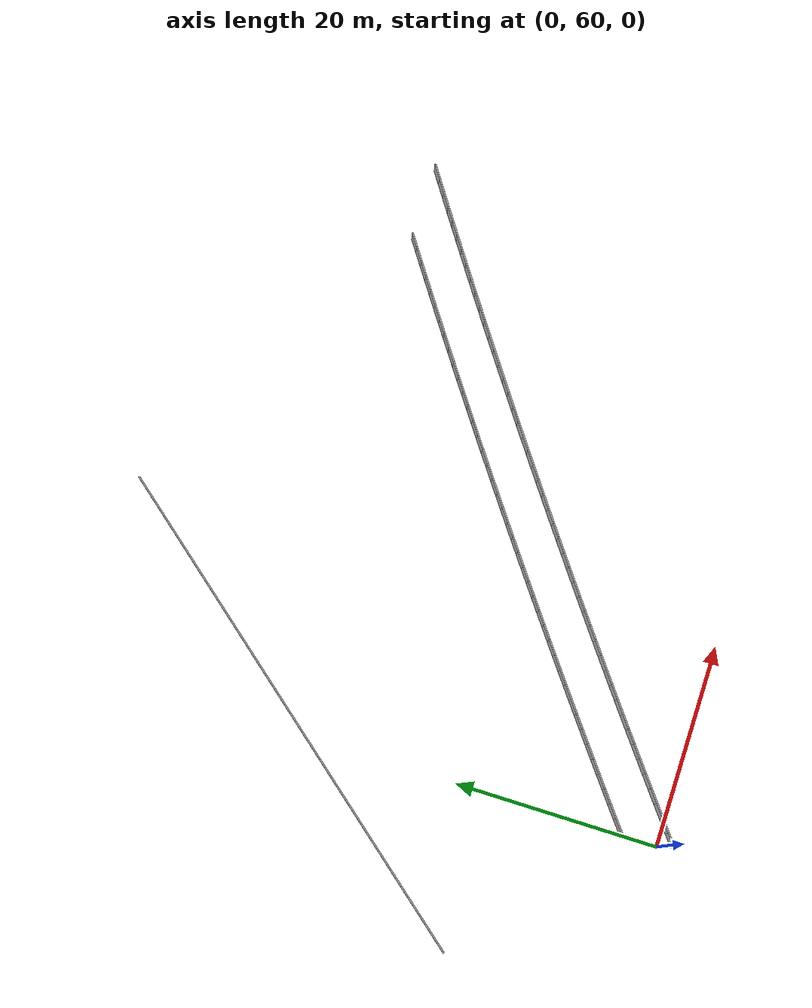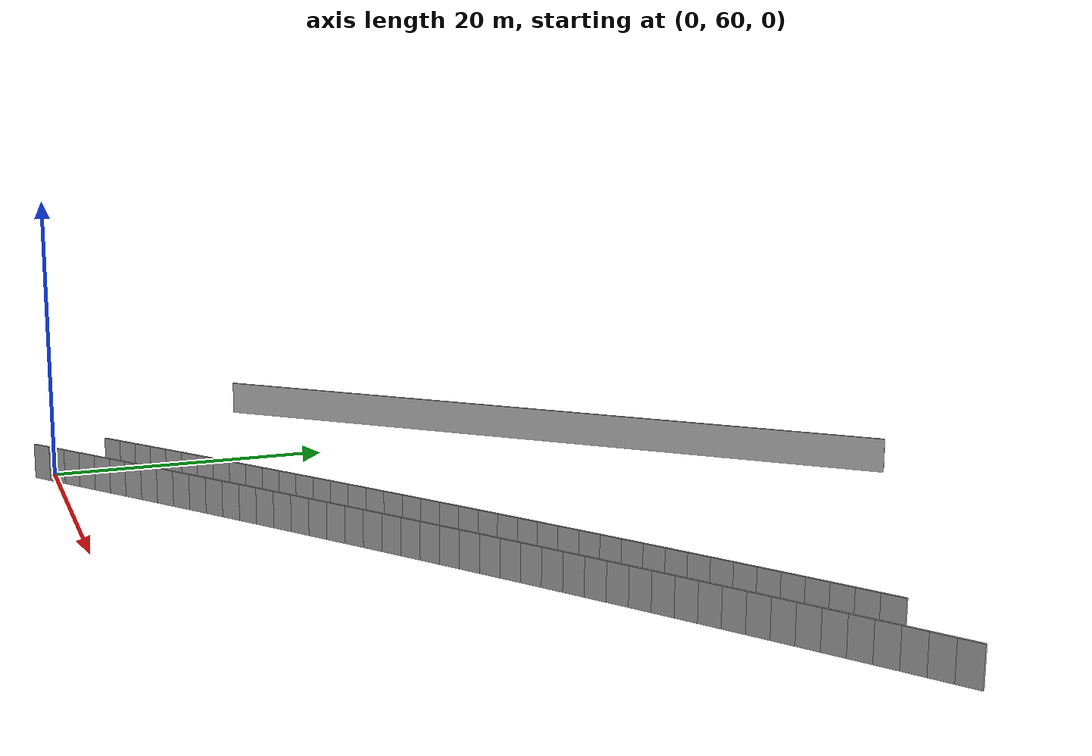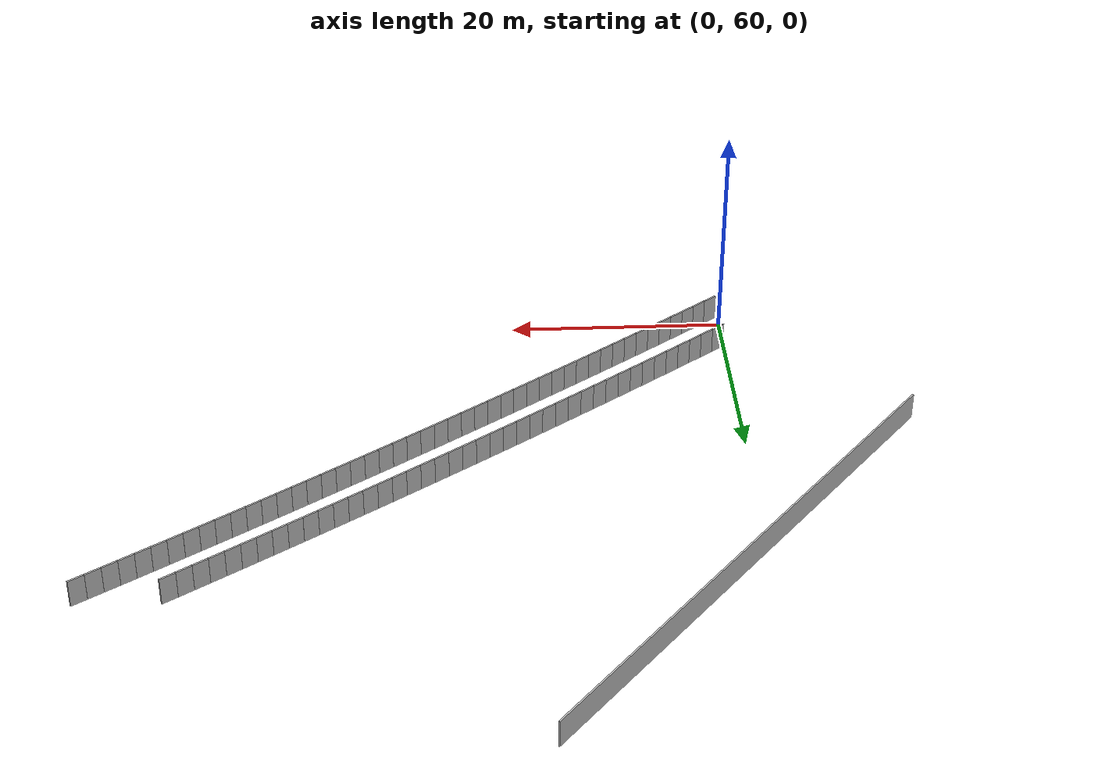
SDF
<?xml version="1.0" ?>
<sdf version="1.6">
  <model name="sps_0621">
    <pose frame="">0 0 0 0 -0 0</pose>
    <static>1</static>
    <self_collide>0</self_collide>
    <allow_auto_disable>0</allow_auto_disable>
    <link name="Wall222">
      <kinematic>0</kinematic>
      <gravity>1</gravity>
      <self_collide>0</self_collide>
      <collision name="collision">
        <geometry>
          <box>
            <size>53.8591 0.15 2.5</size>
          </box>
        </geometry>
        <pose frame="">0 0 0 0 -0 0</pose>
      </collision>
      <visual name="visual">
        <geometry>
          <box>
            <size>53.8591 0.15 2.5</size>
          </box>
        </geometry>
        <pose frame="">0 0 0 0 -0 0</pose>
        <cast_shadows>1</cast_shadows>
        <transparency>0.0</transparency>
      </visual>
      <pose frame="">1.70006 97.1975 1.25 0 -0 0.876505</pose>
    </link>
    <link name="Wall3276">
      <kinematic>0</kinematic>
      <gravity>1</gravity>
      <self_collide>0</self_collide>
      <collision name="collision">
        <geometry>
          <box>
            <size>1.49645 0.15 2.5</size>
          </box>
        </geometry>
        <pose frame="">0 0 0 0 -0 0</pose>
      </collision>
      <visual name="visual">
        <geometry>
          <box>
            <size>1.49645 0.15 2.5</size>
          </box>
        </geometry>
        <pose frame="">0 0 0 0 -0 0</pose>
        <cast_shadows>1</cast_shadows>
        <transparency>0.0</transparency>
      </visual>
      <pose frame="">56.6333 99.4698 1.25 0 0 -2.55124</pose>
    </link>
    <link name="Wall3277">
      <kinematic>0</kinematic>
      <gravity>1</gravity>
      <self_collide>0</self_collide>
      <collision name="collision">
        <geometry>
          <box>
            <size>1.49661 0.15 2.5</size>
          </box>
        </geometry>
        <pose frame="">0 0 0 0 -0 0</pose>
      </collision>
      <visual name="visual">
        <geometry>
          <box>
            <size>1.49661 0.15 2.5</size>
          </box>
        </geometry>
        <pose frame="">0 0 0 0 -0 0</pose>
        <cast_shadows>1</cast_shadows>
        <transparency>0.0</transparency>
      </visual>
      <pose frame="">55.3907 98.6358 1.25 0 0 -2.54969</pose>
    </link>
    <link name="Wall3278">
      <kinematic>0</kinematic>
      <gravity>1</gravity>
      <self_collide>0</self_collide>
      <collision name="collision">
        <geometry>
          <box>
            <size>1.49654 0.15 2.5</size>
          </box>
        </geometry>
        <pose frame="">0 0 0 0 -0 0</pose>
      </collision>
      <visual name="visual">
        <geometry>
          <box>
            <size>1.49654 0.15 2.5</size>
          </box>
        </geometry>
        <pose frame="">0 0 0 0 -0 0</pose>
        <cast_shadows>1</cast_shadows>
        <transparency>0.0</transparency>
      </visual>
      <pose frame="">54.1494 97.7998 1.25 0 0 -2.54808</pose>
    </link>
    <link name="Wall3279">
      <kinematic>0</kinematic>
      <gravity>1</gravity>
      <self_collide>0</self_collide>
      <collision name="collision">
        <geometry>
          <box>
            <size>1.4965 0.15 2.5</size>
          </box>
        </geometry>
        <pose frame="">0 0 0 0 -0 0</pose>
      </collision>
      <visual name="visual">
        <geometry>
          <box>
            <size>1.4965 0.15 2.5</size>
          </box>
        </geometry>
        <pose frame="">0 0 0 0 -0 0</pose>
        <cast_shadows>1</cast_shadows>
        <transparency>0.0</transparency>
      </visual>
      <pose frame="">52.9095 96.9618 1.25 0 0 -2.54644</pose>
    </link>
    <link name="Wall3280">
      <kinematic>0</kinematic>
      <gravity>1</gravity>
      <self_collide>0</self_collide>
      <collision name="collision">
        <geometry>
          <box>
            <size>1.49646 0.15 2.5</size>
          </box>
        </geometry>
        <pose frame="">0 0 0 0 -0 0</pose>
      </collision>
      <visual name="visual">
        <geometry>
          <box>
            <size>1.49646 0.15 2.5</size>
          </box>
        </geometry>
        <pose frame="">0 0 0 0 -0 0</pose>
        <cast_shadows>1</cast_shadows>
        <transparency>0.0</transparency>
      </visual>
      <pose frame="">51.6709 96.122 1.25 0 0 -2.54509</pose>
    </link>
    <link name="Wall3281">
      <kinematic>0</kinematic>
      <gravity>1</gravity>
      <self_collide>0</self_collide>
      <collision name="collision">
        <geometry>
          <box>
            <size>1.49646 0.15 2.5</size>
          </box>
        </geometry>
        <pose frame="">0 0 0 0 -0 0</pose>
      </collision>
      <visual name="visual">
        <geometry>
          <box>
            <size>1.49646 0.15 2.5</size>
          </box>
        </geometry>
        <pose frame="">0 0 0 0 -0 0</pose>
        <cast_shadows>1</cast_shadows>
        <transparency>0.0</transparency>
      </visual>
      <pose frame="">50.4336 95.2803 1.25 0 0 -2.54336</pose>
    </link>
    <link name="Wall3282">
      <kinematic>0</kinematic>
      <gravity>1</gravity>
      <self_collide>0</self_collide>
      <collision name="collision">
        <geometry>
          <box>
            <size>1.49663 0.15 2.5</size>
          </box>
        </geometry>
        <pose frame="">0 0 0 0 -0 0</pose>
      </collision>
      <visual name="visual">
        <geometry>
          <box>
            <size>1.49663 0.15 2.5</size>
          </box>
        </geometry>
        <pose frame="">0 0 0 0 -0 0</pose>
        <cast_shadows>1</cast_shadows>
        <transparency>0.0</transparency>
      </visual>
      <pose frame="">49.1976 94.4365 1.25 0 0 -2.54182</pose>
    </link>
    <link name="Wall3283">
      <kinematic>0</kinematic>
      <gravity>1</gravity>
      <self_collide>0</self_collide>
      <collision name="collision">
        <geometry>
          <box>
            <size>1.49646 0.15 2.5</size>
          </box>
        </geometry>
        <pose frame="">0 0 0 0 -0 0</pose>
      </collision>
      <visual name="visual">
        <geometry>
          <box>
            <size>1.49646 0.15 2.5</size>
          </box>
        </geometry>
        <pose frame="">0 0 0 0 -0 0</pose>
        <cast_shadows>1</cast_shadows>
        <transparency>0.0</transparency>
      </visual>
      <pose frame="">47.9629 93.5907 1.25 0 0 -2.54011</pose>
    </link>
    <link name="Wall3284">
      <kinematic>0</kinematic>
      <gravity>1</gravity>
      <self_collide>0</self_collide>
      <collision name="collision">
        <geometry>
          <box>
            <size>1.49649 0.15 2.5</size>
          </box>
        </geometry>
        <pose frame="">0 0 0 0 -0 0</pose>
      </collision>
      <visual name="visual">
        <geometry>
          <box>
            <size>1.49649 0.15 2.5</size>
          </box>
        </geometry>
        <pose frame="">0 0 0 0 -0 0</pose>
        <cast_shadows>1</cast_shadows>
        <transparency>0.0</transparency>
      </visual>
      <pose frame="">46.7297 92.743 1.25 0 0 -2.53864</pose>
    </link>
    <link name="Wall3285">
      <kinematic>0</kinematic>
      <gravity>1</gravity>
      <self_collide>0</self_collide>
      <collision name="collision">
        <geometry>
          <box>
            <size>1.4964 0.15 2.5</size>
          </box>
        </geometry>
        <pose frame="">0 0 0 0 -0 0</pose>
      </collision>
      <visual name="visual">
        <geometry>
          <box>
            <size>1.4964 0.15 2.5</size>
          </box>
        </geometry>
        <pose frame="">0 0 0 0 -0 0</pose>
        <cast_shadows>1</cast_shadows>
        <transparency>0.0</transparency>
      </visual>
      <pose frame="">45.4979 91.8934 1.25 0 0 -2.53701</pose>
    </link>
    <link name="Wall3286">
      <kinematic>0</kinematic>
      <gravity>1</gravity>
      <self_collide>0</self_collide>
      <collision name="collision">
        <geometry>
          <box>
            <size>1.49653 0.15 2.5</size>
          </box>
        </geometry>
        <pose frame="">0 0 0 0 -0 0</pose>
      </collision>
      <visual name="visual">
        <geometry>
          <box>
            <size>1.49653 0.15 2.5</size>
          </box>
        </geometry>
        <pose frame="">0 0 0 0 -0 0</pose>
        <cast_shadows>1</cast_shadows>
        <transparency>0.0</transparency>
      </visual>
      <pose frame="">44.2673 91.0419 1.25 0 0 -2.53558</pose>
    </link>
    <link name="Wall3287">
      <kinematic>0</kinematic>
      <gravity>1</gravity>
      <self_collide>0</self_collide>
      <collision name="collision">
        <geometry>
          <box>
            <size>1.4964 0.15 2.5</size>
          </box>
        </geometry>
        <pose frame="">0 0 0 0 -0 0</pose>
      </collision>
      <visual name="visual">
        <geometry>
          <box>
            <size>1.4964 0.15 2.5</size>
          </box>
        </geometry>
        <pose frame="">0 0 0 0 -0 0</pose>
        <cast_shadows>1</cast_shadows>
        <transparency>0.0</transparency>
      </visual>
      <pose frame="">43.038 90.1884 1.25 0 0 -2.53378</pose>
    </link>
    <link name="Wall3288">
      <kinematic>0</kinematic>
      <gravity>1</gravity>
      <self_collide>0</self_collide>
      <collision name="collision">
        <geometry>
          <box>
            <size>1.49648 0.15 2.5</size>
          </box>
        </geometry>
        <pose frame="">0 0 0 0 -0 0</pose>
      </collision>
      <visual name="visual">
        <geometry>
          <box>
            <size>1.49648 0.15 2.5</size>
          </box>
        </geometry>
        <pose frame="">0 0 0 0 -0 0</pose>
        <cast_shadows>1</cast_shadows>
        <transparency>0.0</transparency>
      </visual>
      <pose frame="">41.8103 89.3329 1.25 0 0 -2.53228</pose>
    </link>
    <link name="Wall3289">
      <kinematic>0</kinematic>
      <gravity>1</gravity>
      <self_collide>0</self_collide>
      <collision name="collision">
        <geometry>
          <box>
            <size>1.4965 0.15 2.5</size>
          </box>
        </geometry>
        <pose frame="">0 0 0 0 -0 0</pose>
      </collision>
      <visual name="visual">
        <geometry>
          <box>
            <size>1.4965 0.15 2.5</size>
          </box>
        </geometry>
        <pose frame="">0 0 0 0 -0 0</pose>
        <cast_shadows>1</cast_shadows>
        <transparency>0.0</transparency>
      </visual>
      <pose frame="">40.5838 88.4755 1.25 0 0 -2.53069</pose>
    </link>
    <link name="Wall3290">
      <kinematic>0</kinematic>
      <gravity>1</gravity>
      <self_collide>0</self_collide>
      <collision name="collision">
        <geometry>
          <box>
            <size>1.49666 0.15 2.5</size>
          </box>
        </geometry>
        <pose frame="">0 0 0 0 -0 0</pose>
      </collision>
      <visual name="visual">
        <geometry>
          <box>
            <size>1.49666 0.15 2.5</size>
          </box>
        </geometry>
        <pose frame="">0 0 0 0 -0 0</pose>
        <cast_shadows>1</cast_shadows>
        <transparency>0.0</transparency>
      </visual>
      <pose frame="">39.3585 87.6161 1.25 0 0 -2.52912</pose>
    </link>
    <link name="Wall3291">
      <kinematic>0</kinematic>
      <gravity>1</gravity>
      <self_collide>0</self_collide>
      <collision name="collision">
        <geometry>
          <box>
            <size>1.49663 0.15 2.5</size>
          </box>
        </geometry>
        <pose frame="">0 0 0 0 -0 0</pose>
      </collision>
      <visual name="visual">
        <geometry>
          <box>
            <size>1.49663 0.15 2.5</size>
          </box>
        </geometry>
        <pose frame="">0 0 0 0 -0 0</pose>
        <cast_shadows>1</cast_shadows>
        <transparency>0.0</transparency>
      </visual>
      <pose frame="">38.1346 86.7547 1.25 0 0 -2.52752</pose>
    </link>
    <link name="Wall3292">
      <kinematic>0</kinematic>
      <gravity>1</gravity>
      <self_collide>0</self_collide>
      <collision name="collision">
        <geometry>
          <box>
            <size>1.49634 0.15 2.5</size>
          </box>
        </geometry>
        <pose frame="">0 0 0 0 -0 0</pose>
      </collision>
      <visual name="visual">
        <geometry>
          <box>
            <size>1.49634 0.15 2.5</size>
          </box>
        </geometry>
        <pose frame="">0 0 0 0 -0 0</pose>
        <cast_shadows>1</cast_shadows>
        <transparency>0.0</transparency>
      </visual>
      <pose frame="">36.9123 85.8914 1.25 0 0 -2.52588</pose>
    </link>
    <link name="Wall3293">
      <kinematic>0</kinematic>
      <gravity>1</gravity>
      <self_collide>0</self_collide>
      <collision name="collision">
        <geometry>
          <box>
            <size>1.49656 0.15 2.5</size>
          </box>
        </geometry>
        <pose frame="">0 0 0 0 -0 0</pose>
      </collision>
      <visual name="visual">
        <geometry>
          <box>
            <size>1.49656 0.15 2.5</size>
          </box>
        </geometry>
        <pose frame="">0 0 0 0 -0 0</pose>
        <cast_shadows>1</cast_shadows>
        <transparency>0.0</transparency>
      </visual>
      <pose frame="">35.6913 85.0262 1.25 0 0 -2.52433</pose>
    </link>
    <link name="Wall3294">
      <kinematic>0</kinematic>
      <gravity>1</gravity>
      <self_collide>0</self_collide>
      <collision name="collision">
        <geometry>
          <box>
            <size>1.49644 0.15 2.5</size>
          </box>
        </geometry>
        <pose frame="">0 0 0 0 -0 0</pose>
      </collision>
      <visual name="visual">
        <geometry>
          <box>
            <size>1.49644 0.15 2.5</size>
          </box>
        </geometry>
        <pose frame="">0 0 0 0 -0 0</pose>
        <cast_shadows>1</cast_shadows>
        <transparency>0.0</transparency>
      </visual>
      <pose frame="">34.4716 84.1591 1.25 0 0 -2.52283</pose>
    </link>
    <link name="Wall3295">
      <kinematic>0</kinematic>
      <gravity>1</gravity>
      <self_collide>0</self_collide>
      <collision name="collision">
        <geometry>
          <box>
            <size>1.49652 0.15 2.5</size>
          </box>
        </geometry>
        <pose frame="">0 0 0 0 -0 0</pose>
      </collision>
      <visual name="visual">
        <geometry>
          <box>
            <size>1.49652 0.15 2.5</size>
          </box>
        </geometry>
        <pose frame="">0 0 0 0 -0 0</pose>
        <cast_shadows>1</cast_shadows>
        <transparency>0.0</transparency>
      </visual>
      <pose frame="">33.2533 83.2901 1.25 0 0 -2.52121</pose>
    </link>
    <link name="Wall3296">
      <kinematic>0</kinematic>
      <gravity>1</gravity>
      <self_collide>0</self_collide>
      <collision name="collision">
        <geometry>
          <box>
            <size>1.4965 0.15 2.5</size>
          </box>
        </geometry>
        <pose frame="">0 0 0 0 -0 0</pose>
      </collision>
      <visual name="visual">
        <geometry>
          <box>
            <size>1.4965 0.15 2.5</size>
          </box>
        </geometry>
        <pose frame="">0 0 0 0 -0 0</pose>
        <cast_shadows>1</cast_shadows>
        <transparency>0.0</transparency>
      </visual>
      <pose frame="">32.0363 82.4191 1.25 0 0 -2.51955</pose>
    </link>
    <link name="Wall3297">
      <kinematic>0</kinematic>
      <gravity>1</gravity>
      <self_collide>0</self_collide>
      <collision name="collision">
        <geometry>
          <box>
            <size>1.49658 0.15 2.5</size>
          </box>
        </geometry>
        <pose frame="">0 0 0 0 -0 0</pose>
      </collision>
      <visual name="visual">
        <geometry>
          <box>
            <size>1.49658 0.15 2.5</size>
          </box>
        </geometry>
        <pose frame="">0 0 0 0 -0 0</pose>
        <cast_shadows>1</cast_shadows>
        <transparency>0.0</transparency>
      </visual>
      <pose frame="">30.8208 81.5462 1.25 0 0 -2.51808</pose>
    </link>
    <link name="Wall3298">
      <kinematic>0</kinematic>
      <gravity>1</gravity>
      <self_collide>0</self_collide>
      <collision name="collision">
        <geometry>
          <box>
            <size>1.49648 0.15 2.5</size>
          </box>
        </geometry>
        <pose frame="">0 0 0 0 -0 0</pose>
      </collision>
      <visual name="visual">
        <geometry>
          <box>
            <size>1.49648 0.15 2.5</size>
          </box>
        </geometry>
        <pose frame="">0 0 0 0 -0 0</pose>
        <cast_shadows>1</cast_shadows>
        <transparency>0.0</transparency>
      </visual>
      <pose frame="">29.6066 80.6714 1.25 0 0 -2.51642</pose>
    </link>
    <link name="Wall3299">
      <kinematic>0</kinematic>
      <gravity>1</gravity>
      <self_collide>0</self_collide>
      <collision name="collision">
        <geometry>
          <box>
            <size>1.49647 0.15 2.5</size>
          </box>
        </geometry>
        <pose frame="">0 0 0 0 -0 0</pose>
      </collision>
      <visual name="visual">
        <geometry>
          <box>
            <size>1.49647 0.15 2.5</size>
          </box>
        </geometry>
        <pose frame="">0 0 0 0 -0 0</pose>
        <cast_shadows>1</cast_shadows>
        <transparency>0.0</transparency>
      </visual>
      <pose frame="">28.3939 79.7946 1.25 0 0 -2.51476</pose>
    </link>
    <link name="Wall3300">
      <kinematic>0</kinematic>
      <gravity>1</gravity>
      <self_collide>0</self_collide>
      <collision name="collision">
        <geometry>
          <box>
            <size>1.49657 0.15 2.5</size>
          </box>
        </geometry>
        <pose frame="">0 0 0 0 -0 0</pose>
      </collision>
      <visual name="visual">
        <geometry>
          <box>
            <size>1.49657 0.15 2.5</size>
          </box>
        </geometry>
        <pose frame="">0 0 0 0 -0 0</pose>
        <cast_shadows>1</cast_shadows>
        <transparency>0.0</transparency>
      </visual>
      <pose frame="">27.1825 78.9159 1.25 0 0 -2.51335</pose>
    </link>
    <link name="Wall3301">
      <kinematic>0</kinematic>
      <gravity>1</gravity>
      <self_collide>0</self_collide>
      <collision name="collision">
        <geometry>
          <box>
            <size>1.49662 0.15 2.5</size>
          </box>
        </geometry>
        <pose frame="">0 0 0 0 -0 0</pose>
      </collision>
      <visual name="visual">
        <geometry>
          <box>
            <size>1.49662 0.15 2.5</size>
          </box>
        </geometry>
        <pose frame="">0 0 0 0 -0 0</pose>
        <cast_shadows>1</cast_shadows>
        <transparency>0.0</transparency>
      </visual>
      <pose frame="">25.9723 78.0353 1.25 0 0 -2.5117</pose>
    </link>
    <link name="Wall3302">
      <kinematic>0</kinematic>
      <gravity>1</gravity>
      <self_collide>0</self_collide>
      <collision name="collision">
        <geometry>
          <box>
            <size>1.49637 0.15 2.5</size>
          </box>
        </geometry>
        <pose frame="">0 0 0 0 -0 0</pose>
      </collision>
      <visual name="visual">
        <geometry>
          <box>
            <size>1.49637 0.15 2.5</size>
          </box>
        </geometry>
        <pose frame="">0 0 0 0 -0 0</pose>
        <cast_shadows>1</cast_shadows>
        <transparency>0.0</transparency>
      </visual>
      <pose frame="">24.7638 77.1528 1.25 0 0 -2.51007</pose>
    </link>
    <link name="Wall3303">
      <kinematic>0</kinematic>
      <gravity>1</gravity>
      <self_collide>0</self_collide>
      <collision name="collision">
        <geometry>
          <box>
            <size>1.49659 0.15 2.5</size>
          </box>
        </geometry>
        <pose frame="">0 0 0 0 -0 0</pose>
      </collision>
      <visual name="visual">
        <geometry>
          <box>
            <size>1.49659 0.15 2.5</size>
          </box>
        </geometry>
        <pose frame="">0 0 0 0 -0 0</pose>
        <cast_shadows>1</cast_shadows>
        <transparency>0.0</transparency>
      </visual>
      <pose frame="">23.5566 76.2684 1.25 0 0 -2.50856</pose>
    </link>
    <link name="Wall3304">
      <kinematic>0</kinematic>
      <gravity>1</gravity>
      <self_collide>0</self_collide>
      <collision name="collision">
        <geometry>
          <box>
            <size>1.4964 0.15 2.5</size>
          </box>
        </geometry>
        <pose frame="">0 0 0 0 -0 0</pose>
      </collision>
      <visual name="visual">
        <geometry>
          <box>
            <size>1.4964 0.15 2.5</size>
          </box>
        </geometry>
        <pose frame="">0 0 0 0 -0 0</pose>
        <cast_shadows>1</cast_shadows>
        <transparency>0.0</transparency>
      </visual>
      <pose frame="">22.3508 75.3821 1.25 0 0 -2.50694</pose>
    </link>
    <link name="Wall3305">
      <kinematic>0</kinematic>
      <gravity>1</gravity>
      <self_collide>0</self_collide>
      <collision name="collision">
        <geometry>
          <box>
            <size>1.49646 0.15 2.5</size>
          </box>
        </geometry>
        <pose frame="">0 0 0 0 -0 0</pose>
      </collision>
      <visual name="visual">
        <geometry>
          <box>
            <size>1.49646 0.15 2.5</size>
          </box>
        </geometry>
        <pose frame="">0 0 0 0 -0 0</pose>
        <cast_shadows>1</cast_shadows>
        <transparency>0.0</transparency>
      </visual>
      <pose frame="">21.1464 74.4939 1.25 0 0 -2.5053</pose>
    </link>
    <link name="Wall3306">
      <kinematic>0</kinematic>
      <gravity>1</gravity>
      <self_collide>0</self_collide>
      <collision name="collision">
        <geometry>
          <box>
            <size>1.49664 0.15 2.5</size>
          </box>
        </geometry>
        <pose frame="">0 0 0 0 -0 0</pose>
      </collision>
      <visual name="visual">
        <geometry>
          <box>
            <size>1.49664 0.15 2.5</size>
          </box>
        </geometry>
        <pose frame="">0 0 0 0 -0 0</pose>
        <cast_shadows>1</cast_shadows>
        <transparency>0.0</transparency>
      </visual>
      <pose frame="">19.9434 73.6037 1.25 0 0 -2.50377</pose>
    </link>
    <link name="Wall3307">
      <kinematic>0</kinematic>
      <gravity>1</gravity>
      <self_collide>0</self_collide>
      <collision name="collision">
        <geometry>
          <box>
            <size>1.49635 0.15 2.5</size>
          </box>
        </geometry>
        <pose frame="">0 0 0 0 -0 0</pose>
      </collision>
      <visual name="visual">
        <geometry>
          <box>
            <size>1.49635 0.15 2.5</size>
          </box>
        </geometry>
        <pose frame="">0 0 0 0 -0 0</pose>
        <cast_shadows>1</cast_shadows>
        <transparency>0.0</transparency>
      </visual>
      <pose frame="">18.7418 72.7117 1.25 0 0 -2.50225</pose>
    </link>
    <link name="Wall3308">
      <kinematic>0</kinematic>
      <gravity>1</gravity>
      <self_collide>0</self_collide>
      <collision name="collision">
        <geometry>
          <box>
            <size>1.49639 0.15 2.5</size>
          </box>
        </geometry>
        <pose frame="">0 0 0 0 -0 0</pose>
      </collision>
      <visual name="visual">
        <geometry>
          <box>
            <size>1.49639 0.15 2.5</size>
          </box>
        </geometry>
        <pose frame="">0 0 0 0 -0 0</pose>
        <cast_shadows>1</cast_shadows>
        <transparency>0.0</transparency>
      </visual>
      <pose frame="">17.5417 71.8179 1.25 0 0 -2.50064</pose>
    </link>
    <link name="Wall3309">
      <kinematic>0</kinematic>
      <gravity>1</gravity>
      <self_collide>0</self_collide>
      <collision name="collision">
        <geometry>
          <box>
            <size>1.49662 0.15 2.5</size>
          </box>
        </geometry>
        <pose frame="">0 0 0 0 -0 0</pose>
      </collision>
      <visual name="visual">
        <geometry>
          <box>
            <size>1.49662 0.15 2.5</size>
          </box>
        </geometry>
        <pose frame="">0 0 0 0 -0 0</pose>
        <cast_shadows>1</cast_shadows>
        <transparency>0.0</transparency>
      </visual>
      <pose frame="">16.3429 70.9221 1.25 0 0 -2.49908</pose>
    </link>
    <link name="Wall3310">
      <kinematic>0</kinematic>
      <gravity>1</gravity>
      <self_collide>0</self_collide>
      <collision name="collision">
        <geometry>
          <box>
            <size>1.49656 0.15 2.5</size>
          </box>
        </geometry>
        <pose frame="">0 0 0 0 -0 0</pose>
      </collision>
      <visual name="visual">
        <geometry>
          <box>
            <size>1.49656 0.15 2.5</size>
          </box>
        </geometry>
        <pose frame="">0 0 0 0 -0 0</pose>
        <cast_shadows>1</cast_shadows>
        <transparency>0.0</transparency>
      </visual>
      <pose frame="">15.1456 70.0243 1.25 0 0 -2.49737</pose>
    </link>
    <link name="Wall3311">
      <kinematic>0</kinematic>
      <gravity>1</gravity>
      <self_collide>0</self_collide>
      <collision name="collision">
        <geometry>
          <box>
            <size>1.49654 0.15 2.5</size>
          </box>
        </geometry>
        <pose frame="">0 0 0 0 -0 0</pose>
      </collision>
      <visual name="visual">
        <geometry>
          <box>
            <size>1.49654 0.15 2.5</size>
          </box>
        </geometry>
        <pose frame="">0 0 0 0 -0 0</pose>
        <cast_shadows>1</cast_shadows>
        <transparency>0.0</transparency>
      </visual>
      <pose frame="">13.9497 69.1246 1.25 0 0 -2.49582</pose>
    </link>
    <link name="Wall3312">
      <kinematic>0</kinematic>
      <gravity>1</gravity>
      <self_collide>0</self_collide>
      <collision name="collision">
        <geometry>
          <box>
            <size>1.49653 0.15 2.5</size>
          </box>
        </geometry>
        <pose frame="">0 0 0 0 -0 0</pose>
      </collision>
      <visual name="visual">
        <geometry>
          <box>
            <size>1.49653 0.15 2.5</size>
          </box>
        </geometry>
        <pose frame="">0 0 0 0 -0 0</pose>
        <cast_shadows>1</cast_shadows>
        <transparency>0.0</transparency>
      </visual>
      <pose frame="">12.7551 68.2231 1.25 0 0 -2.49434</pose>
    </link>
    <link name="Wall3313">
      <kinematic>0</kinematic>
      <gravity>1</gravity>
      <self_collide>0</self_collide>
      <collision name="collision">
        <geometry>
          <box>
            <size>1.4964 0.15 2.5</size>
          </box>
        </geometry>
        <pose frame="">0 0 0 0 -0 0</pose>
      </collision>
      <visual name="visual">
        <geometry>
          <box>
            <size>1.4964 0.15 2.5</size>
          </box>
        </geometry>
        <pose frame="">0 0 0 0 -0 0</pose>
        <cast_shadows>1</cast_shadows>
        <transparency>0.0</transparency>
      </visual>
      <pose frame="">11.5621 67.3197 1.25 0 0 -2.49263</pose>
    </link>
    <link name="Wall3314">
      <kinematic>0</kinematic>
      <gravity>1</gravity>
      <self_collide>0</self_collide>
      <collision name="collision">
        <geometry>
          <box>
            <size>1.49653 0.15 2.5</size>
          </box>
        </geometry>
        <pose frame="">0 0 0 0 -0 0</pose>
      </collision>
      <visual name="visual">
        <geometry>
          <box>
            <size>1.49653 0.15 2.5</size>
          </box>
        </geometry>
        <pose frame="">0 0 0 0 -0 0</pose>
        <cast_shadows>1</cast_shadows>
        <transparency>0.0</transparency>
      </visual>
      <pose frame="">10.3706 66.4143 1.25 0 0 -2.49096</pose>
    </link>
    <link name="Wall3315">
      <kinematic>0</kinematic>
      <gravity>1</gravity>
      <self_collide>0</self_collide>
      <collision name="collision">
        <geometry>
          <box>
            <size>1.49634 0.15 2.5</size>
          </box>
        </geometry>
        <pose frame="">0 0 0 0 -0 0</pose>
      </collision>
      <visual name="visual">
        <geometry>
          <box>
            <size>1.49634 0.15 2.5</size>
          </box>
        </geometry>
        <pose frame="">0 0 0 0 -0 0</pose>
        <cast_shadows>1</cast_shadows>
        <transparency>0.0</transparency>
      </visual>
      <pose frame="">9.18053 65.5071 1.25 0 0 -2.48958</pose>
    </link>
    <link name="Wall3316">
      <kinematic>0</kinematic>
      <gravity>1</gravity>
      <self_collide>0</self_collide>
      <collision name="collision">
        <geometry>
          <box>
            <size>1.49649 0.15 2.5</size>
          </box>
        </geometry>
        <pose frame="">0 0 0 0 -0 0</pose>
      </collision>
      <visual name="visual">
        <geometry>
          <box>
            <size>1.49649 0.15 2.5</size>
          </box>
        </geometry>
        <pose frame="">0 0 0 0 -0 0</pose>
        <cast_shadows>1</cast_shadows>
        <transparency>0.0</transparency>
      </visual>
      <pose frame="">7.99184 64.5981 1.25 0 0 -2.48791</pose>
    </link>
    <link name="Wall3317">
      <kinematic>0</kinematic>
      <gravity>1</gravity>
      <self_collide>0</self_collide>
      <collision name="collision">
        <geometry>
          <box>
            <size>1.49671 0.15 2.5</size>
          </box>
        </geometry>
        <pose frame="">0 0 0 0 -0 0</pose>
      </collision>
      <visual name="visual">
        <geometry>
          <box>
            <size>1.49671 0.15 2.5</size>
          </box>
        </geometry>
        <pose frame="">0 0 0 0 -0 0</pose>
        <cast_shadows>1</cast_shadows>
        <transparency>0.0</transparency>
      </visual>
      <pose frame="">6.80447 63.6871 1.25 0 0 -2.48638</pose>
    </link>
    <link name="Wall3318">
      <kinematic>0</kinematic>
      <gravity>1</gravity>
      <self_collide>0</self_collide>
      <collision name="collision">
        <geometry>
          <box>
            <size>1.49642 0.15 2.5</size>
          </box>
        </geometry>
        <pose frame="">0 0 0 0 -0 0</pose>
      </collision>
      <visual name="visual">
        <geometry>
          <box>
            <size>1.49642 0.15 2.5</size>
          </box>
        </geometry>
        <pose frame="">0 0 0 0 -0 0</pose>
        <cast_shadows>1</cast_shadows>
        <transparency>0.0</transparency>
      </visual>
      <pose frame="">5.61858 62.7742 1.25 0 0 -2.48469</pose>
    </link>
    <link name="Wall3319">
      <kinematic>0</kinematic>
      <gravity>1</gravity>
      <self_collide>0</self_collide>
      <collision name="collision">
        <geometry>
          <box>
            <size>1.49644 0.15 2.5</size>
          </box>
        </geometry>
        <pose frame="">0 0 0 0 -0 0</pose>
      </collision>
      <visual name="visual">
        <geometry>
          <box>
            <size>1.49644 0.15 2.5</size>
          </box>
        </geometry>
        <pose frame="">0 0 0 0 -0 0</pose>
        <cast_shadows>1</cast_shadows>
        <transparency>0.0</transparency>
      </visual>
      <pose frame="">4.43426 61.8595 1.25 0 0 -2.4832</pose>
    </link>
    <link name="Wall3320">
      <kinematic>0</kinematic>
      <gravity>1</gravity>
      <self_collide>0</self_collide>
      <collision name="collision">
        <geometry>
          <box>
            <size>1.49652 0.15 2.5</size>
          </box>
        </geometry>
        <pose frame="">0 0 0 0 -0 0</pose>
      </collision>
      <visual name="visual">
        <geometry>
          <box>
            <size>1.49652 0.15 2.5</size>
          </box>
        </geometry>
        <pose frame="">0 0 0 0 -0 0</pose>
        <cast_shadows>1</cast_shadows>
        <transparency>0.0</transparency>
      </visual>
      <pose frame="">3.25133 60.9429 1.25 0 0 -2.48154</pose>
    </link>
    <link name="Wall3321">
      <kinematic>0</kinematic>
      <gravity>1</gravity>
      <self_collide>0</self_collide>
      <collision name="collision">
        <geometry>
          <box>
            <size>1.4965 0.15 2.5</size>
          </box>
        </geometry>
        <pose frame="">0 0 0 0 -0 0</pose>
      </collision>
      <visual name="visual">
        <geometry>
          <box>
            <size>1.4965 0.15 2.5</size>
          </box>
        </geometry>
        <pose frame="">0 0 0 0 -0 0</pose>
        <cast_shadows>1</cast_shadows>
        <transparency>0.0</transparency>
      </visual>
      <pose frame="">2.06994 60.0243 1.25 0 0 -2.47983</pose>
    </link>
    <link name="Wall3322">
      <kinematic>0</kinematic>
      <gravity>1</gravity>
      <self_collide>0</self_collide>
      <collision name="collision">
        <geometry>
          <box>
            <size>1.49652 0.15 2.5</size>
          </box>
        </geometry>
        <pose frame="">0 0 0 0 -0 0</pose>
      </collision>
      <visual name="visual">
        <geometry>
          <box>
            <size>1.49652 0.15 2.5</size>
          </box>
        </geometry>
        <pose frame="">0 0 0 0 -0 0</pose>
        <cast_shadows>1</cast_shadows>
        <transparency>0.0</transparency>
      </visual>
      <pose frame="">0.889945 59.1039 1.25 0 0 -2.47849</pose>
    </link>
    <link name="Wall5891">
      <kinematic>0</kinematic>
      <gravity>1</gravity>
      <self_collide>0</self_collide>
      <collision name="collision">
        <geometry>
          <box>
            <size>1.50309 0.15 2.5</size>
          </box>
        </geometry>
        <pose frame="">0 0 0 0 -0 0</pose>
      </collision>
      <visual name="visual">
        <geometry>
          <box>
            <size>1.50309 0.15 2.5</size>
          </box>
        </geometry>
        <pose frame="">0 0 0 0 -0 0</pose>
        <cast_shadows>1</cast_shadows>
        <transparency>0.0</transparency>
      </visual>
      <pose frame="">49.335 99.5402 1.25 0 0 -2.5449</pose>
    </link>
    <link name="Wall5892">
      <kinematic>0</kinematic>
      <gravity>1</gravity>
      <self_collide>0</self_collide>
      <collision name="collision">
        <geometry>
          <box>
            <size>1.50308 0.15 2.5</size>
          </box>
        </geometry>
        <pose frame="">0 0 0 0 -0 0</pose>
      </collision>
      <visual name="visual">
        <geometry>
          <box>
            <size>1.50308 0.15 2.5</size>
          </box>
        </geometry>
        <pose frame="">0 0 0 0 -0 0</pose>
        <cast_shadows>1</cast_shadows>
        <transparency>0.0</transparency>
      </visual>
      <pose frame="">48.0923 98.6946 1.25 0 0 -2.54332</pose>
    </link>
    <link name="Wall5893">
      <kinematic>0</kinematic>
      <gravity>1</gravity>
      <self_collide>0</self_collide>
      <collision name="collision">
        <geometry>
          <box>
            <size>1.50309 0.15 2.5</size>
          </box>
        </geometry>
        <pose frame="">0 0 0 0 -0 0</pose>
      </collision>
      <visual name="visual">
        <geometry>
          <box>
            <size>1.50309 0.15 2.5</size>
          </box>
        </geometry>
        <pose frame="">0 0 0 0 -0 0</pose>
        <cast_shadows>1</cast_shadows>
        <transparency>0.0</transparency>
      </visual>
      <pose frame="">46.851 97.847 1.25 0 0 -2.54165</pose>
    </link>
    <link name="Wall5894">
      <kinematic>0</kinematic>
      <gravity>1</gravity>
      <self_collide>0</self_collide>
      <collision name="collision">
        <geometry>
          <box>
            <size>1.50313 0.15 2.5</size>
          </box>
        </geometry>
        <pose frame="">0 0 0 0 -0 0</pose>
      </collision>
      <visual name="visual">
        <geometry>
          <box>
            <size>1.50313 0.15 2.5</size>
          </box>
        </geometry>
        <pose frame="">0 0 0 0 -0 0</pose>
        <cast_shadows>1</cast_shadows>
        <transparency>0.0</transparency>
      </visual>
      <pose frame="">45.611 96.9975 1.25 0 0 -2.54024</pose>
    </link>
    <link name="Wall5895">
      <kinematic>0</kinematic>
      <gravity>1</gravity>
      <self_collide>0</self_collide>
      <collision name="collision">
        <geometry>
          <box>
            <size>1.50306 0.15 2.5</size>
          </box>
        </geometry>
        <pose frame="">0 0 0 0 -0 0</pose>
      </collision>
      <visual name="visual">
        <geometry>
          <box>
            <size>1.50306 0.15 2.5</size>
          </box>
        </geometry>
        <pose frame="">0 0 0 0 -0 0</pose>
        <cast_shadows>1</cast_shadows>
        <transparency>0.0</transparency>
      </visual>
      <pose frame="">44.3722 96.1461 1.25 0 0 -2.53859</pose>
    </link>
    <link name="Wall5896">
      <kinematic>0</kinematic>
      <gravity>1</gravity>
      <self_collide>0</self_collide>
      <collision name="collision">
        <geometry>
          <box>
            <size>1.50291 0.15 2.5</size>
          </box>
        </geometry>
        <pose frame="">0 0 0 0 -0 0</pose>
      </collision>
      <visual name="visual">
        <geometry>
          <box>
            <size>1.50291 0.15 2.5</size>
          </box>
        </geometry>
        <pose frame="">0 0 0 0 -0 0</pose>
        <cast_shadows>1</cast_shadows>
        <transparency>0.0</transparency>
      </visual>
      <pose frame="">43.135 95.2928 1.25 0 0 -2.53709</pose>
    </link>
    <link name="Wall5897">
      <kinematic>0</kinematic>
      <gravity>1</gravity>
      <self_collide>0</self_collide>
      <collision name="collision">
        <geometry>
          <box>
            <size>1.50321 0.15 2.5</size>
          </box>
        </geometry>
        <pose frame="">0 0 0 0 -0 0</pose>
      </collision>
      <visual name="visual">
        <geometry>
          <box>
            <size>1.50321 0.15 2.5</size>
          </box>
        </geometry>
        <pose frame="">0 0 0 0 -0 0</pose>
        <cast_shadows>1</cast_shadows>
        <transparency>0.0</transparency>
      </visual>
      <pose frame="">41.899 94.4375 1.25 0 0 -2.53545</pose>
    </link>
    <link name="Wall5898">
      <kinematic>0</kinematic>
      <gravity>1</gravity>
      <self_collide>0</self_collide>
      <collision name="collision">
        <geometry>
          <box>
            <size>1.50305 0.15 2.5</size>
          </box>
        </geometry>
        <pose frame="">0 0 0 0 -0 0</pose>
      </collision>
      <visual name="visual">
        <geometry>
          <box>
            <size>1.50305 0.15 2.5</size>
          </box>
        </geometry>
        <pose frame="">0 0 0 0 -0 0</pose>
        <cast_shadows>1</cast_shadows>
        <transparency>0.0</transparency>
      </visual>
      <pose frame="">40.6644 93.5801 1.25 0 0 -2.53374</pose>
    </link>
    <link name="Wall5899">
      <kinematic>0</kinematic>
      <gravity>1</gravity>
      <self_collide>0</self_collide>
      <collision name="collision">
        <geometry>
          <box>
            <size>1.5031 0.15 2.5</size>
          </box>
        </geometry>
        <pose frame="">0 0 0 0 -0 0</pose>
      </collision>
      <visual name="visual">
        <geometry>
          <box>
            <size>1.5031 0.15 2.5</size>
          </box>
        </geometry>
        <pose frame="">0 0 0 0 -0 0</pose>
        <cast_shadows>1</cast_shadows>
        <transparency>0.0</transparency>
      </visual>
      <pose frame="">39.4311 92.7208 1.25 0 0 -2.53228</pose>
    </link>
    <link name="Wall5900">
      <kinematic>0</kinematic>
      <gravity>1</gravity>
      <self_collide>0</self_collide>
      <collision name="collision">
        <geometry>
          <box>
            <size>1.50307 0.15 2.5</size>
          </box>
        </geometry>
        <pose frame="">0 0 0 0 -0 0</pose>
      </collision>
      <visual name="visual">
        <geometry>
          <box>
            <size>1.50307 0.15 2.5</size>
          </box>
        </geometry>
        <pose frame="">0 0 0 0 -0 0</pose>
        <cast_shadows>1</cast_shadows>
        <transparency>0.0</transparency>
      </visual>
      <pose frame="">38.1992 91.8596 1.25 0 0 -2.53068</pose>
    </link>
    <link name="Wall5901">
      <kinematic>0</kinematic>
      <gravity>1</gravity>
      <self_collide>0</self_collide>
      <collision name="collision">
        <geometry>
          <box>
            <size>1.50312 0.15 2.5</size>
          </box>
        </geometry>
        <pose frame="">0 0 0 0 -0 0</pose>
      </collision>
      <visual name="visual">
        <geometry>
          <box>
            <size>1.50312 0.15 2.5</size>
          </box>
        </geometry>
        <pose frame="">0 0 0 0 -0 0</pose>
        <cast_shadows>1</cast_shadows>
        <transparency>0.0</transparency>
      </visual>
      <pose frame="">36.9687 90.9965 1.25 0 0 -2.52922</pose>
    </link>
    <link name="Wall5902">
      <kinematic>0</kinematic>
      <gravity>1</gravity>
      <self_collide>0</self_collide>
      <collision name="collision">
        <geometry>
          <box>
            <size>1.50305 0.15 2.5</size>
          </box>
        </geometry>
        <pose frame="">0 0 0 0 -0 0</pose>
      </collision>
      <visual name="visual">
        <geometry>
          <box>
            <size>1.50305 0.15 2.5</size>
          </box>
        </geometry>
        <pose frame="">0 0 0 0 -0 0</pose>
        <cast_shadows>1</cast_shadows>
        <transparency>0.0</transparency>
      </visual>
      <pose frame="">35.7395 90.1314 1.25 0 0 -2.52745</pose>
    </link>
    <link name="Wall5903">
      <kinematic>0</kinematic>
      <gravity>1</gravity>
      <self_collide>0</self_collide>
      <collision name="collision">
        <geometry>
          <box>
            <size>1.5032 0.15 2.5</size>
          </box>
        </geometry>
        <pose frame="">0 0 0 0 -0 0</pose>
      </collision>
      <visual name="visual">
        <geometry>
          <box>
            <size>1.5032 0.15 2.5</size>
          </box>
        </geometry>
        <pose frame="">0 0 0 0 -0 0</pose>
        <cast_shadows>1</cast_shadows>
        <transparency>0.0</transparency>
      </visual>
      <pose frame="">34.5116 89.2643 1.25 0 0 -2.52597</pose>
    </link>
    <link name="Wall5904">
      <kinematic>0</kinematic>
      <gravity>1</gravity>
      <self_collide>0</self_collide>
      <collision name="collision">
        <geometry>
          <box>
            <size>1.50313 0.15 2.5</size>
          </box>
        </geometry>
        <pose frame="">0 0 0 0 -0 0</pose>
      </collision>
      <visual name="visual">
        <geometry>
          <box>
            <size>1.50313 0.15 2.5</size>
          </box>
        </geometry>
        <pose frame="">0 0 0 0 -0 0</pose>
        <cast_shadows>1</cast_shadows>
        <transparency>0.0</transparency>
      </visual>
      <pose frame="">33.2851 88.3953 1.25 0 0 -2.52435</pose>
    </link>
    <link name="Wall5905">
      <kinematic>0</kinematic>
      <gravity>1</gravity>
      <self_collide>0</self_collide>
      <collision name="collision">
        <geometry>
          <box>
            <size>1.5032 0.15 2.5</size>
          </box>
        </geometry>
        <pose frame="">0 0 0 0 -0 0</pose>
      </collision>
      <visual name="visual">
        <geometry>
          <box>
            <size>1.5032 0.15 2.5</size>
          </box>
        </geometry>
        <pose frame="">0 0 0 0 -0 0</pose>
        <cast_shadows>1</cast_shadows>
        <transparency>0.0</transparency>
      </visual>
      <pose frame="">32.0601 87.5243 1.25 0 0 -2.52274</pose>
    </link>
    <link name="Wall5906">
      <kinematic>0</kinematic>
      <gravity>1</gravity>
      <self_collide>0</self_collide>
      <collision name="collision">
        <geometry>
          <box>
            <size>1.50289 0.15 2.5</size>
          </box>
        </geometry>
        <pose frame="">0 0 0 0 -0 0</pose>
      </collision>
      <visual name="visual">
        <geometry>
          <box>
            <size>1.50289 0.15 2.5</size>
          </box>
        </geometry>
        <pose frame="">0 0 0 0 -0 0</pose>
        <cast_shadows>1</cast_shadows>
        <transparency>0.0</transparency>
      </visual>
      <pose frame="">30.8364 86.6514 1.25 0 0 -2.52114</pose>
    </link>
    <link name="Wall5907">
      <kinematic>0</kinematic>
      <gravity>1</gravity>
      <self_collide>0</self_collide>
      <collision name="collision">
        <geometry>
          <box>
            <size>1.50312 0.15 2.5</size>
          </box>
        </geometry>
        <pose frame="">0 0 0 0 -0 0</pose>
      </collision>
      <visual name="visual">
        <geometry>
          <box>
            <size>1.50312 0.15 2.5</size>
          </box>
        </geometry>
        <pose frame="">0 0 0 0 -0 0</pose>
        <cast_shadows>1</cast_shadows>
        <transparency>0.0</transparency>
      </visual>
      <pose frame="">29.6142 85.7766 1.25 0 0 -2.51961</pose>
    </link>
    <link name="Wall5908">
      <kinematic>0</kinematic>
      <gravity>1</gravity>
      <self_collide>0</self_collide>
      <collision name="collision">
        <geometry>
          <box>
            <size>1.50315 0.15 2.5</size>
          </box>
        </geometry>
        <pose frame="">0 0 0 0 -0 0</pose>
      </collision>
      <visual name="visual">
        <geometry>
          <box>
            <size>1.50315 0.15 2.5</size>
          </box>
        </geometry>
        <pose frame="">0 0 0 0 -0 0</pose>
        <cast_shadows>1</cast_shadows>
        <transparency>0.0</transparency>
      </visual>
      <pose frame="">28.3933 84.8998 1.25 0 0 -2.51797</pose>
    </link>
    <link name="Wall5909">
      <kinematic>0</kinematic>
      <gravity>1</gravity>
      <self_collide>0</self_collide>
      <collision name="collision">
        <geometry>
          <box>
            <size>1.503 0.15 2.5</size>
          </box>
        </geometry>
        <pose frame="">0 0 0 0 -0 0</pose>
      </collision>
      <visual name="visual">
        <geometry>
          <box>
            <size>1.503 0.15 2.5</size>
          </box>
        </geometry>
        <pose frame="">0 0 0 0 -0 0</pose>
        <cast_shadows>1</cast_shadows>
        <transparency>0.0</transparency>
      </visual>
      <pose frame="">27.1739 84.0211 1.25 0 0 -2.51645</pose>
    </link>
    <link name="Wall5910">
      <kinematic>0</kinematic>
      <gravity>1</gravity>
      <self_collide>0</self_collide>
      <collision name="collision">
        <geometry>
          <box>
            <size>1.50323 0.15 2.5</size>
          </box>
        </geometry>
        <pose frame="">0 0 0 0 -0 0</pose>
      </collision>
      <visual name="visual">
        <geometry>
          <box>
            <size>1.50323 0.15 2.5</size>
          </box>
        </geometry>
        <pose frame="">0 0 0 0 -0 0</pose>
        <cast_shadows>1</cast_shadows>
        <transparency>0.0</transparency>
      </visual>
      <pose frame="">25.9558 83.1404 1.25 0 0 -2.51471</pose>
    </link>
    <link name="Wall5911">
      <kinematic>0</kinematic>
      <gravity>1</gravity>
      <self_collide>0</self_collide>
      <collision name="collision">
        <geometry>
          <box>
            <size>1.50299 0.15 2.5</size>
          </box>
        </geometry>
        <pose frame="">0 0 0 0 -0 0</pose>
      </collision>
      <visual name="visual">
        <geometry>
          <box>
            <size>1.50299 0.15 2.5</size>
          </box>
        </geometry>
        <pose frame="">0 0 0 0 -0 0</pose>
        <cast_shadows>1</cast_shadows>
        <transparency>0.0</transparency>
      </visual>
      <pose frame="">24.7391 82.2578 1.25 0 0 -2.51334</pose>
    </link>
    <link name="Wall5912">
      <kinematic>0</kinematic>
      <gravity>1</gravity>
      <self_collide>0</self_collide>
      <collision name="collision">
        <geometry>
          <box>
            <size>1.50308 0.15 2.5</size>
          </box>
        </geometry>
        <pose frame="">0 0 0 0 -0 0</pose>
      </collision>
      <visual name="visual">
        <geometry>
          <box>
            <size>1.50308 0.15 2.5</size>
          </box>
        </geometry>
        <pose frame="">0 0 0 0 -0 0</pose>
        <cast_shadows>1</cast_shadows>
        <transparency>0.0</transparency>
      </visual>
      <pose frame="">23.5238 81.3734 1.25 0 0 -2.51167</pose>
    </link>
    <link name="Wall5913">
      <kinematic>0</kinematic>
      <gravity>1</gravity>
      <self_collide>0</self_collide>
      <collision name="collision">
        <geometry>
          <box>
            <size>1.5031 0.15 2.5</size>
          </box>
        </geometry>
        <pose frame="">0 0 0 0 -0 0</pose>
      </collision>
      <visual name="visual">
        <geometry>
          <box>
            <size>1.5031 0.15 2.5</size>
          </box>
        </geometry>
        <pose frame="">0 0 0 0 -0 0</pose>
        <cast_shadows>1</cast_shadows>
        <transparency>0.0</transparency>
      </visual>
      <pose frame="">22.3099 80.487 1.25 0 0 -2.51007</pose>
    </link>
    <link name="Wall5914">
      <kinematic>0</kinematic>
      <gravity>1</gravity>
      <self_collide>0</self_collide>
      <collision name="collision">
        <geometry>
          <box>
            <size>1.50305 0.15 2.5</size>
          </box>
        </geometry>
        <pose frame="">0 0 0 0 -0 0</pose>
      </collision>
      <visual name="visual">
        <geometry>
          <box>
            <size>1.50305 0.15 2.5</size>
          </box>
        </geometry>
        <pose frame="">0 0 0 0 -0 0</pose>
        <cast_shadows>1</cast_shadows>
        <transparency>0.0</transparency>
      </visual>
      <pose frame="">21.0974 79.5987 1.25 0 0 -2.50854</pose>
    </link>
    <link name="Wall5915">
      <kinematic>0</kinematic>
      <gravity>1</gravity>
      <self_collide>0</self_collide>
      <collision name="collision">
        <geometry>
          <box>
            <size>1.50312 0.15 2.5</size>
          </box>
        </geometry>
        <pose frame="">0 0 0 0 -0 0</pose>
      </collision>
      <visual name="visual">
        <geometry>
          <box>
            <size>1.50312 0.15 2.5</size>
          </box>
        </geometry>
        <pose frame="">0 0 0 0 -0 0</pose>
        <cast_shadows>1</cast_shadows>
        <transparency>0.0</transparency>
      </visual>
      <pose frame="">19.8863 78.7085 1.25 0 0 -2.50696</pose>
    </link>
    <link name="Wall5916">
      <kinematic>0</kinematic>
      <gravity>1</gravity>
      <self_collide>0</self_collide>
      <collision name="collision">
        <geometry>
          <box>
            <size>1.50314 0.15 2.5</size>
          </box>
        </geometry>
        <pose frame="">0 0 0 0 -0 0</pose>
      </collision>
      <visual name="visual">
        <geometry>
          <box>
            <size>1.50314 0.15 2.5</size>
          </box>
        </geometry>
        <pose frame="">0 0 0 0 -0 0</pose>
        <cast_shadows>1</cast_shadows>
        <transparency>0.0</transparency>
      </visual>
      <pose frame="">18.6765 77.8163 1.25 0 0 -2.5053</pose>
    </link>
    <link name="Wall5917">
      <kinematic>0</kinematic>
      <gravity>1</gravity>
      <self_collide>0</self_collide>
      <collision name="collision">
        <geometry>
          <box>
            <size>1.50295 0.15 2.5</size>
          </box>
        </geometry>
        <pose frame="">0 0 0 0 -0 0</pose>
      </collision>
      <visual name="visual">
        <geometry>
          <box>
            <size>1.50295 0.15 2.5</size>
          </box>
        </geometry>
        <pose frame="">0 0 0 0 -0 0</pose>
        <cast_shadows>1</cast_shadows>
        <transparency>0.0</transparency>
      </visual>
      <pose frame="">17.4683 76.9222 1.25 0 0 -2.5037</pose>
    </link>
    <link name="Wall5918">
      <kinematic>0</kinematic>
      <gravity>1</gravity>
      <self_collide>0</self_collide>
      <collision name="collision">
        <geometry>
          <box>
            <size>1.50314 0.15 2.5</size>
          </box>
        </geometry>
        <pose frame="">0 0 0 0 -0 0</pose>
      </collision>
      <visual name="visual">
        <geometry>
          <box>
            <size>1.50314 0.15 2.5</size>
          </box>
        </geometry>
        <pose frame="">0 0 0 0 -0 0</pose>
        <cast_shadows>1</cast_shadows>
        <transparency>0.0</transparency>
      </visual>
      <pose frame="">16.2616 76.0262 1.25 0 0 -2.50217</pose>
    </link>
    <link name="Wall5919">
      <kinematic>0</kinematic>
      <gravity>1</gravity>
      <self_collide>0</self_collide>
      <collision name="collision">
        <geometry>
          <box>
            <size>1.50315 0.15 2.5</size>
          </box>
        </geometry>
        <pose frame="">0 0 0 0 -0 0</pose>
      </collision>
      <visual name="visual">
        <geometry>
          <box>
            <size>1.50315 0.15 2.5</size>
          </box>
        </geometry>
        <pose frame="">0 0 0 0 -0 0</pose>
        <cast_shadows>1</cast_shadows>
        <transparency>0.0</transparency>
      </visual>
      <pose frame="">15.0561 75.1283 1.25 0 0 -2.50066</pose>
    </link>
    <link name="Wall5920">
      <kinematic>0</kinematic>
      <gravity>1</gravity>
      <self_collide>0</self_collide>
      <collision name="collision">
        <geometry>
          <box>
            <size>1.50304 0.15 2.5</size>
          </box>
        </geometry>
        <pose frame="">0 0 0 0 -0 0</pose>
      </collision>
      <visual name="visual">
        <geometry>
          <box>
            <size>1.50304 0.15 2.5</size>
          </box>
        </geometry>
        <pose frame="">0 0 0 0 -0 0</pose>
        <cast_shadows>1</cast_shadows>
        <transparency>0.0</transparency>
      </visual>
      <pose frame="">13.852 74.2285 1.25 0 0 -2.49893</pose>
    </link>
    <link name="Wall5921">
      <kinematic>0</kinematic>
      <gravity>1</gravity>
      <self_collide>0</self_collide>
      <collision name="collision">
        <geometry>
          <box>
            <size>1.50313 0.15 2.5</size>
          </box>
        </geometry>
        <pose frame="">0 0 0 0 -0 0</pose>
      </collision>
      <visual name="visual">
        <geometry>
          <box>
            <size>1.50313 0.15 2.5</size>
          </box>
        </geometry>
        <pose frame="">0 0 0 0 -0 0</pose>
        <cast_shadows>1</cast_shadows>
        <transparency>0.0</transparency>
      </visual>
      <pose frame="">12.6495 73.3268 1.25 0 0 -2.4975</pose>
    </link>
    <link name="Wall5922">
      <kinematic>0</kinematic>
      <gravity>1</gravity>
      <self_collide>0</self_collide>
      <collision name="collision">
        <geometry>
          <box>
            <size>1.50301 0.15 2.5</size>
          </box>
        </geometry>
        <pose frame="">0 0 0 0 -0 0</pose>
      </collision>
      <visual name="visual">
        <geometry>
          <box>
            <size>1.50301 0.15 2.5</size>
          </box>
        </geometry>
        <pose frame="">0 0 0 0 -0 0</pose>
        <cast_shadows>1</cast_shadows>
        <transparency>0.0</transparency>
      </visual>
      <pose frame="">11.4483 72.4233 1.25 0 0 -2.49591</pose>
    </link>
    <link name="Wall5923">
      <kinematic>0</kinematic>
      <gravity>1</gravity>
      <self_collide>0</self_collide>
      <collision name="collision">
        <geometry>
          <box>
            <size>1.50287 0.15 2.5</size>
          </box>
        </geometry>
        <pose frame="">0 0 0 0 -0 0</pose>
      </collision>
      <visual name="visual">
        <geometry>
          <box>
            <size>1.50287 0.15 2.5</size>
          </box>
        </geometry>
        <pose frame="">0 0 0 0 -0 0</pose>
        <cast_shadows>1</cast_shadows>
        <transparency>0.0</transparency>
      </visual>
      <pose frame="">10.2486 71.5179 1.25 0 0 -2.49422</pose>
    </link>
    <link name="Wall5924">
      <kinematic>0</kinematic>
      <gravity>1</gravity>
      <self_collide>0</self_collide>
      <collision name="collision">
        <geometry>
          <box>
            <size>1.50315 0.15 2.5</size>
          </box>
        </geometry>
        <pose frame="">0 0 0 0 -0 0</pose>
      </collision>
      <visual name="visual">
        <geometry>
          <box>
            <size>1.50315 0.15 2.5</size>
          </box>
        </geometry>
        <pose frame="">0 0 0 0 -0 0</pose>
        <cast_shadows>1</cast_shadows>
        <transparency>0.0</transparency>
      </visual>
      <pose frame="">9.05047 70.6105 1.25 0 0 -2.49263</pose>
    </link>
    <link name="Wall5925">
      <kinematic>0</kinematic>
      <gravity>1</gravity>
      <self_collide>0</self_collide>
      <collision name="collision">
        <geometry>
          <box>
            <size>1.50311 0.15 2.5</size>
          </box>
        </geometry>
        <pose frame="">0 0 0 0 -0 0</pose>
      </collision>
      <visual name="visual">
        <geometry>
          <box>
            <size>1.50311 0.15 2.5</size>
          </box>
        </geometry>
        <pose frame="">0 0 0 0 -0 0</pose>
        <cast_shadows>1</cast_shadows>
        <transparency>0.0</transparency>
      </visual>
      <pose frame="">7.85366 69.7011 1.25 0 0 -2.49098</pose>
    </link>
    <link name="Wall5926">
      <kinematic>0</kinematic>
      <gravity>1</gravity>
      <self_collide>0</self_collide>
      <collision name="collision">
        <geometry>
          <box>
            <size>1.50317 0.15 2.5</size>
          </box>
        </geometry>
        <pose frame="">0 0 0 0 -0 0</pose>
      </collision>
      <visual name="visual">
        <geometry>
          <box>
            <size>1.50317 0.15 2.5</size>
          </box>
        </geometry>
        <pose frame="">0 0 0 0 -0 0</pose>
        <cast_shadows>1</cast_shadows>
        <transparency>0.0</transparency>
      </visual>
      <pose frame="">6.65826 68.7898 1.25 0 0 -2.48952</pose>
    </link>
    <link name="Wall5927">
      <kinematic>0</kinematic>
      <gravity>1</gravity>
      <self_collide>0</self_collide>
      <collision name="collision">
        <geometry>
          <box>
            <size>1.50307 0.15 2.5</size>
          </box>
        </geometry>
        <pose frame="">0 0 0 0 -0 0</pose>
      </collision>
      <visual name="visual">
        <geometry>
          <box>
            <size>1.50307 0.15 2.5</size>
          </box>
        </geometry>
        <pose frame="">0 0 0 0 -0 0</pose>
        <cast_shadows>1</cast_shadows>
        <transparency>0.0</transparency>
      </visual>
      <pose frame="">5.46426 67.8767 1.25 0 0 -2.48794</pose>
    </link>
    <link name="Wall5928">
      <kinematic>0</kinematic>
      <gravity>1</gravity>
      <self_collide>0</self_collide>
      <collision name="collision">
        <geometry>
          <box>
            <size>1.50313 0.15 2.5</size>
          </box>
        </geometry>
        <pose frame="">0 0 0 0 -0 0</pose>
      </collision>
      <visual name="visual">
        <geometry>
          <box>
            <size>1.50313 0.15 2.5</size>
          </box>
        </geometry>
        <pose frame="">0 0 0 0 -0 0</pose>
        <cast_shadows>1</cast_shadows>
        <transparency>0.0</transparency>
      </visual>
      <pose frame="">4.27175 66.9617 1.25 0 0 -2.48628</pose>
    </link>
    <link name="Wall5929">
      <kinematic>0</kinematic>
      <gravity>1</gravity>
      <self_collide>0</self_collide>
      <collision name="collision">
        <geometry>
          <box>
            <size>1.50315 0.15 2.5</size>
          </box>
        </geometry>
        <pose frame="">0 0 0 0 -0 0</pose>
      </collision>
      <visual name="visual">
        <geometry>
          <box>
            <size>1.50315 0.15 2.5</size>
          </box>
        </geometry>
        <pose frame="">0 0 0 0 -0 0</pose>
        <cast_shadows>1</cast_shadows>
        <transparency>0.0</transparency>
      </visual>
      <pose frame="">3.08065 66.0448 1.25 0 0 -2.48481</pose>
    </link>
    <link name="Wall5930">
      <kinematic>0</kinematic>
      <gravity>1</gravity>
      <self_collide>0</self_collide>
      <collision name="collision">
        <geometry>
          <box>
            <size>1.50296 0.15 2.5</size>
          </box>
        </geometry>
        <pose frame="">0 0 0 0 -0 0</pose>
      </collision>
      <visual name="visual">
        <geometry>
          <box>
            <size>1.50296 0.15 2.5</size>
          </box>
        </geometry>
        <pose frame="">0 0 0 0 -0 0</pose>
        <cast_shadows>1</cast_shadows>
        <transparency>0.0</transparency>
      </visual>
      <pose frame="">1.89104 65.1261 1.25 0 0 -2.48317</pose>
    </link>
    <link name="Wall5931">
      <kinematic>0</kinematic>
      <gravity>1</gravity>
      <self_collide>0</self_collide>
      <collision name="collision">
        <geometry>
          <box>
            <size>1.50305 0.15 2.5</size>
          </box>
        </geometry>
        <pose frame="">0 0 0 0 -0 0</pose>
      </collision>
      <visual name="visual">
        <geometry>
          <box>
            <size>1.50305 0.15 2.5</size>
          </box>
        </geometry>
        <pose frame="">0 0 0 0 -0 0</pose>
        <cast_shadows>1</cast_shadows>
        <transparency>0.0</transparency>
      </visual>
      <pose frame="">0.702964 64.2055 1.25 0 0 -2.48157</pose>
    </link>
  </model>
</sdf>
